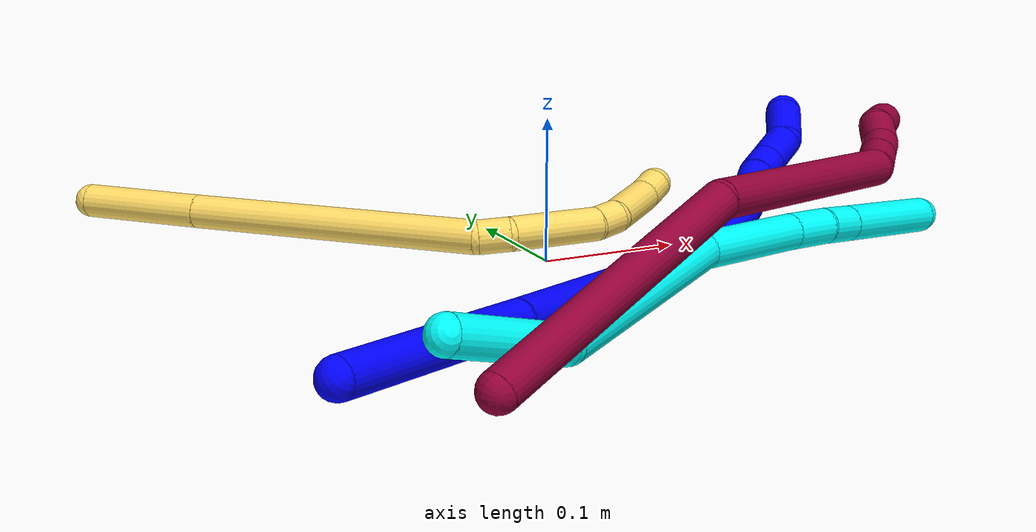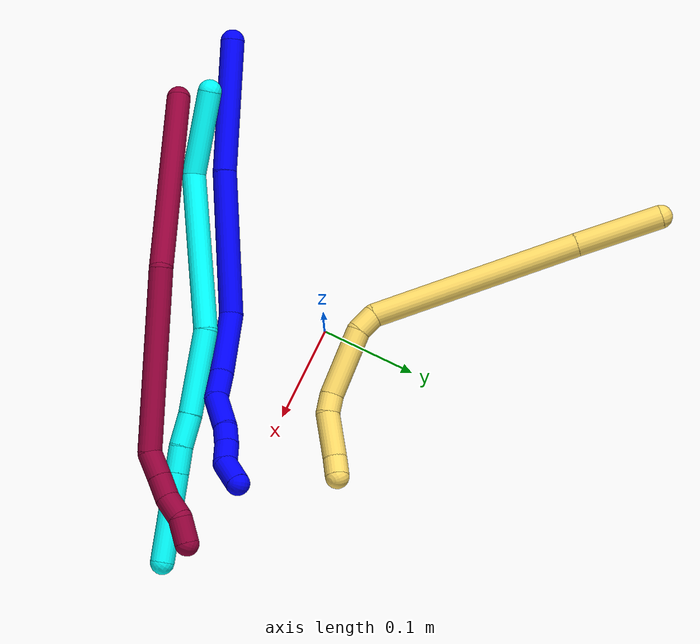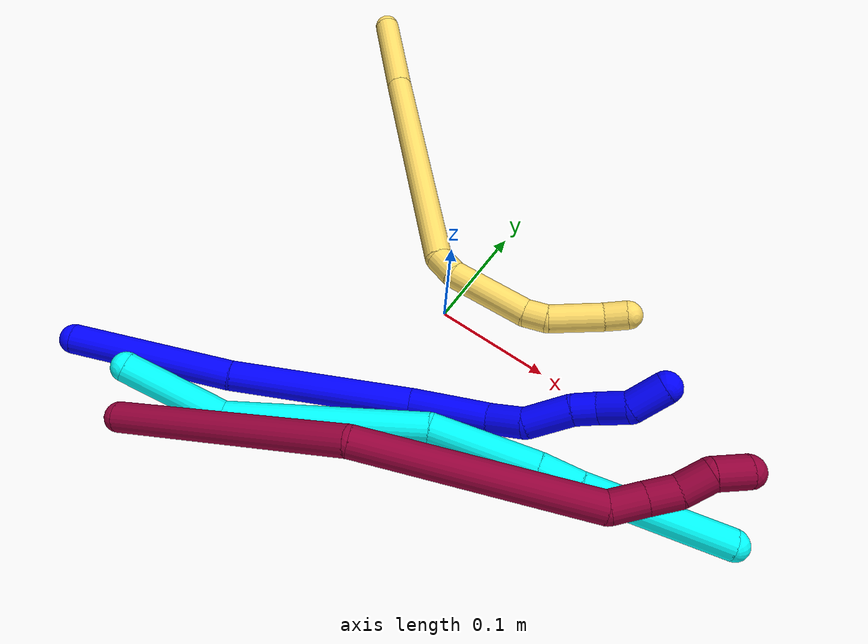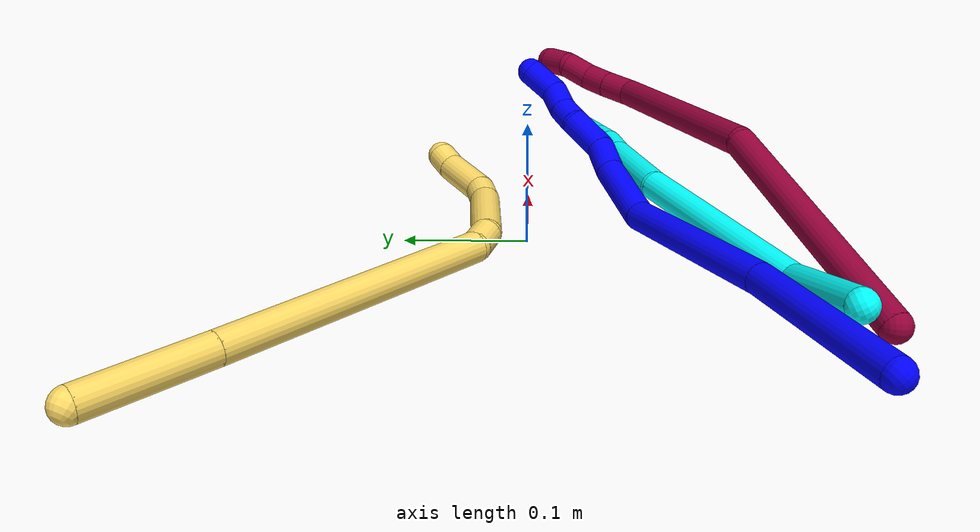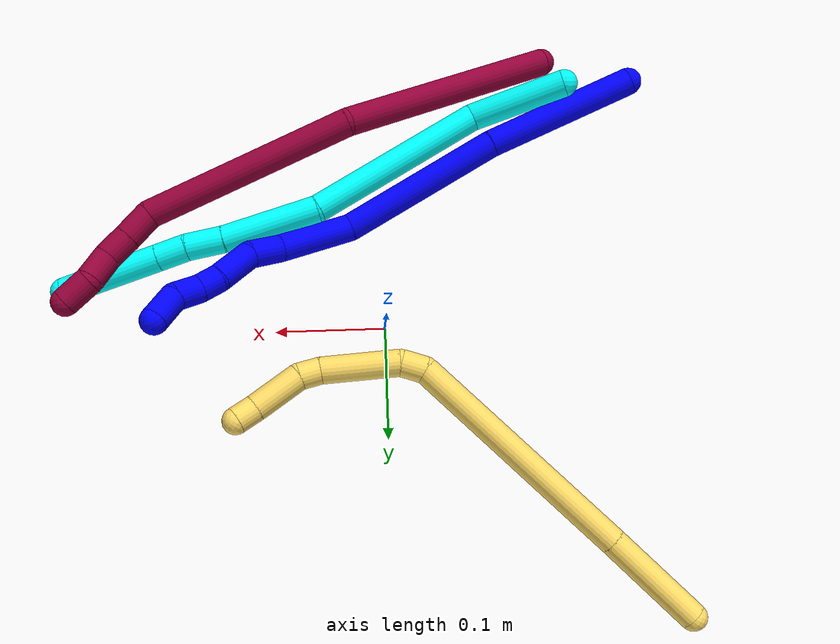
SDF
<sdf version="1.7">
 <world name="default">
  <model name="1">
   <static>0</static>
   <link name="1">
    <collision name="collision-cylinder-e_1_1_4">
     <pose>0.066259 0.021722 -0.000694 -1.60273 1.25386 -1.28435</pose>
     <geometry><cylinder><radius>0.0125</radius><length>0.139464</length></cylinder></geometry>
     <surface>
      <friction><ode><mu>1.16</mu><mu2>1.16</mu2><slip1>0</slip1><slip2>0</slip2></ode></friction>
      <contact><ode><kp>1e+06</kp><kd>1</kd><max_vel>0</max_vel><min_depth>0.001</min_depth></ode></contact>
     </surface>
    </collision>
    <visual name="visual-cylinder-e_1_1_4">
     <pose>0.066259 0.021722 -0.000694 -1.60273 1.25386 -1.28435</pose>
     <geometry><cylinder><radius>0.0125</radius><length>0.139464</length></cylinder></geometry>
     <material><ambient>0 0 1 1</ambient></material>
    </visual>
    <collision name="collision-cylinder-e_2_4_5">
     <pose>0.202685 0.069022 -0.00985 -1.8903 1.20418 -1.52079</pose>
     <geometry><cylinder><radius>0.0125</radius><length>0.150324</length></cylinder></geometry>
     <surface>
      <friction><ode><mu>1.16</mu><mu2>1.16</mu2><slip1>0</slip1><slip2>0</slip2></ode></friction>
      <contact><ode><kp>1e+06</kp><kd>1</kd><max_vel>0</max_vel><min_depth>0.001</min_depth></ode></contact>
     </surface>
    </collision>
    <visual name="visual-cylinder-e_2_4_5">
     <pose>0.202685 0.069022 -0.00985 -1.8903 1.20418 -1.52079</pose>
     <geometry><cylinder><radius>0.0125</radius><length>0.150324</length></cylinder></geometry>
     <material><ambient>0 0 1 1</ambient></material>
    </visual>
    <collision name="collision-cylinder-e_3_5_6">
     <pose>0.302407 0.109568 -0.011312 -1.1333 1.06098 -0.714396</pose>
     <geometry><cylinder><radius>0.0125</radius><length>0.06772</length></cylinder></geometry>
     <surface>
      <friction><ode><mu>1.16</mu><mu2>1.16</mu2><slip1>0</slip1><slip2>0</slip2></ode></friction>
      <contact><ode><kp>1e+06</kp><kd>1</kd><max_vel>0</max_vel><min_depth>0.001</min_depth></ode></contact>
     </surface>
    </collision>
    <visual name="visual-cylinder-e_3_5_6">
     <pose>0.302407 0.109568 -0.011312 -1.1333 1.06098 -0.714396</pose>
     <geometry><cylinder><radius>0.0125</radius><length>0.06772</length></cylinder></geometry>
     <material><ambient>0 0 1 1</ambient></material>
    </visual>
    <collision name="collision-cylinder-e_4_6_7">
     <pose>0.343459 0.132893 0.001003 -1.00444 0.859783 -0.493338</pose>
     <geometry><cylinder><radius>0.0125</radius><length>0.030351</length></cylinder></geometry>
     <surface>
      <friction><ode><mu>1.16</mu><mu2>1.16</mu2><slip1>0</slip1><slip2>0</slip2></ode></friction>
      <contact><ode><kp>1e+06</kp><kd>1</kd><max_vel>0</max_vel><min_depth>0.001</min_depth></ode></contact>
     </surface>
    </collision>
    <visual name="visual-cylinder-e_4_6_7">
     <pose>0.343459 0.132893 0.001003 -1.00444 0.859783 -0.493338</pose>
     <geometry><cylinder><radius>0.0125</radius><length>0.030351</length></cylinder></geometry>
     <material><ambient>0 0 1 1</ambient></material>
    </visual>
    <collision name="collision-cylinder-e_5_7_8">
     <pose>0.36691 0.156019 0.006705 -1.54453 0.68023 -0.663874</pose>
     <geometry><cylinder><radius>0.0125</radius><length>0.038005</length></cylinder></geometry>
     <surface>
      <friction><ode><mu>1.16</mu><mu2>1.16</mu2><slip1>0</slip1><slip2>0</slip2></ode></friction>
      <contact><ode><kp>1e+06</kp><kd>1</kd><max_vel>0</max_vel><min_depth>0.001</min_depth></ode></contact>
     </surface>
    </collision>
    <visual name="visual-cylinder-e_5_7_8">
     <pose>0.36691 0.156019 0.006705 -1.54453 0.68023 -0.663874</pose>
     <geometry><cylinder><radius>0.0125</radius><length>0.038005</length></cylinder></geometry>
     <material><ambient>0 0 1 1</ambient></material>
    </visual>
    <collision name="collision-cylinder-e_6_8_9">
     <pose>0.386601 0.177126 0.00799 -1.43028 0.879638 -0.77594</pose>
     <geometry><cylinder><radius>0.0125</radius><length>0.020089</length></cylinder></geometry>
     <surface>
      <friction><ode><mu>1.16</mu><mu2>1.16</mu2><slip1>0</slip1><slip2>0</slip2></ode></friction>
      <contact><ode><kp>1e+06</kp><kd>1</kd><max_vel>0</max_vel><min_depth>0.001</min_depth></ode></contact>
     </surface>
    </collision>
    <visual name="visual-cylinder-e_6_8_9">
     <pose>0.386601 0.177126 0.00799 -1.43028 0.879638 -0.77594</pose>
     <geometry><cylinder><radius>0.0125</radius><length>0.020089</length></cylinder></geometry>
     <material><ambient>0 0 1 1</ambient></material>
    </visual>
    <collision name="collision-cylinder-e_7_9_10">
     <pose>0.402751 0.191257 0.012437 -1.14323 0.776514 -0.51454</pose>
     <geometry><cylinder><radius>0.0125</radius><length>0.024004</length></cylinder></geometry>
     <surface>
      <friction><ode><mu>1.16</mu><mu2>1.16</mu2><slip1>0</slip1><slip2>0</slip2></ode></friction>
      <contact><ode><kp>1e+06</kp><kd>1</kd><max_vel>0</max_vel><min_depth>0.001</min_depth></ode></contact>
     </surface>
    </collision>
    <visual name="visual-cylinder-e_7_9_10">
     <pose>0.402751 0.191257 0.012437 -1.14323 0.776514 -0.51454</pose>
     <geometry><cylinder><radius>0.0125</radius><length>0.024004</length></cylinder></geometry>
     <material><ambient>0 0 1 1</ambient></material>
    </visual>
    <collision name="collision-cylinder-e_8_10_2">
     <pose>0.417875 0.212443 0.014917 -1.65049 0.463263 -0.500206</pose>
     <geometry><cylinder><radius>0.0125</radius><length>0.030043</length></cylinder></geometry>
     <surface>
      <friction><ode><mu>1.16</mu><mu2>1.16</mu2><slip1>0</slip1><slip2>0</slip2></ode></friction>
      <contact><ode><kp>1e+06</kp><kd>1</kd><max_vel>0</max_vel><min_depth>0.001</min_depth></ode></contact>
     </surface>
    </collision>
    <visual name="visual-cylinder-e_8_10_2">
     <pose>0.417875 0.212443 0.014917 -1.65049 0.463263 -0.500206</pose>
     <geometry><cylinder><radius>0.0125</radius><length>0.030043</length></cylinder></geometry>
     <material><ambient>0 0 1 1</ambient></material>
    </visual>
    <collision name="collision-sphere-2">
     <pose>0.424588 0.225839 0.013847 0 -0 0</pose>
     <geometry><sphere><radius>0.0125</radius></sphere></geometry>
     <surface>
      <friction><ode><mu>1.16</mu><mu2>1.16</mu2><slip1>0</slip1><slip2>0</slip2></ode></friction>
      <contact><ode><kp>1e+06</kp><kd>1</kd><max_vel>0</max_vel><min_depth>0.001</min_depth></ode></contact>
     </surface>
    </collision>
    <visual name="visual-sphere-2">
     <pose>0.424588 0.225839 0.013847 0 -0 0</pose>
     <geometry><sphere><radius>0.0125</radius></sphere></geometry>
     <material><ambient>0 0 1 1</ambient></material>
    </visual>
    <collision name="collision-sphere-10">
     <pose>0.411162 0.199048 0.015987 0 -0 0</pose>
     <geometry><sphere><radius>0.0125</radius></sphere></geometry>
     <surface>
      <friction><ode><mu>1.16</mu><mu2>1.16</mu2><slip1>0</slip1><slip2>0</slip2></ode></friction>
      <contact><ode><kp>1e+06</kp><kd>1</kd><max_vel>0</max_vel><min_depth>0.001</min_depth></ode></contact>
     </surface>
    </collision>
    <visual name="visual-sphere-10">
     <pose>0.411162 0.199048 0.015987 0 -0 0</pose>
     <geometry><sphere><radius>0.0125</radius></sphere></geometry>
     <material><ambient>0 0 1 1</ambient></material>
    </visual>
    <collision name="collision-sphere-9">
     <pose>0.39434 0.183466 0.008886 0 -0 0</pose>
     <geometry><sphere><radius>0.0125</radius></sphere></geometry>
     <surface>
      <friction><ode><mu>1.16</mu><mu2>1.16</mu2><slip1>0</slip1><slip2>0</slip2></ode></friction>
      <contact><ode><kp>1e+06</kp><kd>1</kd><max_vel>0</max_vel><min_depth>0.001</min_depth></ode></contact>
     </surface>
    </collision>
    <visual name="visual-sphere-9">
     <pose>0.39434 0.183466 0.008886 0 -0 0</pose>
     <geometry><sphere><radius>0.0125</radius></sphere></geometry>
     <material><ambient>0 0 1 1</ambient></material>
    </visual>
    <collision name="collision-sphere-4">
     <pose>0.132518 0.043443 -0.001388 0 -0 0</pose>
     <geometry><sphere><radius>0.0125</radius></sphere></geometry>
     <surface>
      <friction><ode><mu>1.16</mu><mu2>1.16</mu2><slip1>0</slip1><slip2>0</slip2></ode></friction>
      <contact><ode><kp>1e+06</kp><kd>1</kd><max_vel>0</max_vel><min_depth>0.001</min_depth></ode></contact>
     </surface>
    </collision>
    <visual name="visual-sphere-4">
     <pose>0.132518 0.043443 -0.001388 0 -0 0</pose>
     <geometry><sphere><radius>0.0125</radius></sphere></geometry>
     <material><ambient>0 0 1 1</ambient></material>
    </visual>
    <collision name="collision-sphere-1">
     <geometry><sphere><radius>0.0125</radius></sphere></geometry>
     <surface>
      <friction><ode><mu>1.16</mu><mu2>1.16</mu2><slip1>0</slip1><slip2>0</slip2></ode></friction>
      <contact><ode><kp>1e+06</kp><kd>1</kd><max_vel>0</max_vel><min_depth>0.001</min_depth></ode></contact>
     </surface>
    </collision>
    <visual name="visual-sphere-1">
     <geometry><sphere><radius>0.0125</radius></sphere></geometry>
     <material><ambient>0 0 1 1</ambient></material>
    </visual>
    <collision name="collision-sphere-8">
     <pose>0.378862 0.170787 0.007093 0 -0 0</pose>
     <geometry><sphere><radius>0.0125</radius></sphere></geometry>
     <surface>
      <friction><ode><mu>1.16</mu><mu2>1.16</mu2><slip1>0</slip1><slip2>0</slip2></ode></friction>
      <contact><ode><kp>1e+06</kp><kd>1</kd><max_vel>0</max_vel><min_depth>0.001</min_depth></ode></contact>
     </surface>
    </collision>
    <visual name="visual-sphere-8">
     <pose>0.378862 0.170787 0.007093 0 -0 0</pose>
     <geometry><sphere><radius>0.0125</radius></sphere></geometry>
     <material><ambient>0 0 1 1</ambient></material>
    </visual>
    <collision name="collision-sphere-5">
     <pose>0.272853 0.0946 -0.018313 0 -0 0</pose>
     <geometry><sphere><radius>0.0125</radius></sphere></geometry>
     <surface>
      <friction><ode><mu>1.16</mu><mu2>1.16</mu2><slip1>0</slip1><slip2>0</slip2></ode></friction>
      <contact><ode><kp>1e+06</kp><kd>1</kd><max_vel>0</max_vel><min_depth>0.001</min_depth></ode></contact>
     </surface>
    </collision>
    <visual name="visual-sphere-5">
     <pose>0.272853 0.0946 -0.018313 0 -0 0</pose>
     <geometry><sphere><radius>0.0125</radius></sphere></geometry>
     <material><ambient>0 0 1 1</ambient></material>
    </visual>
    <collision name="collision-sphere-6">
     <pose>0.331961 0.124536 -0.004311 0 -0 0</pose>
     <geometry><sphere><radius>0.0125</radius></sphere></geometry>
     <surface>
      <friction><ode><mu>1.16</mu><mu2>1.16</mu2><slip1>0</slip1><slip2>0</slip2></ode></friction>
      <contact><ode><kp>1e+06</kp><kd>1</kd><max_vel>0</max_vel><min_depth>0.001</min_depth></ode></contact>
     </surface>
    </collision>
    <visual name="visual-sphere-6">
     <pose>0.331961 0.124536 -0.004311 0 -0 0</pose>
     <geometry><sphere><radius>0.0125</radius></sphere></geometry>
     <material><ambient>0 0 1 1</ambient></material>
    </visual>
    <collision name="collision-sphere-7">
     <pose>0.354958 0.141251 0.006317 0 -0 0</pose>
     <geometry><sphere><radius>0.0125</radius></sphere></geometry>
     <surface>
      <friction><ode><mu>1.16</mu><mu2>1.16</mu2><slip1>0</slip1><slip2>0</slip2></ode></friction>
      <contact><ode><kp>1e+06</kp><kd>1</kd><max_vel>0</max_vel><min_depth>0.001</min_depth></ode></contact>
     </surface>
    </collision>
    <visual name="visual-sphere-7">
     <pose>0.354958 0.141251 0.006317 0 -0 0</pose>
     <geometry><sphere><radius>0.0125</radius></sphere></geometry>
     <material><ambient>0 0 1 1</ambient></material>
    </visual>
    <inertial>
     <pose>0.22909 0.090639 -0.002302 0 -0 0</pose>
     <mass>0.5</mass>
     <inertia>
      <ixx>-0.000109</ixx>
      <ixy>0</ixy>
      <ixz>0</ixz>
      <iyy>0.000321</iyy>
      <iyz>0</iyz>
      <izz>-0.000719</izz>
     </inertia>
    </inertial>
   </link>
   <pose>-0.230425 -0.220535 0.022945 0.883502 0.262718 0.196092</pose>
  </model>
  <model name="3">
   <static>0</static>
   <link name="3">
    <collision name="collision-cylinder-e_1_1_4">
     <pose>0.039881 -0.00477 -0.0186 2.89057 1.12208 2.74528</pose>
     <geometry><cylinder><radius>0.0125</radius><length>0.088526</length></cylinder></geometry>
     <surface>
      <friction><ode><mu>1.16</mu><mu2>1.16</mu2><slip1>0</slip1><slip2>0</slip2></ode></friction>
      <contact><ode><kp>1e+06</kp><kd>1</kd><max_vel>0</max_vel><min_depth>0.001</min_depth></ode></contact>
     </surface>
    </collision>
    <visual name="visual-cylinder-e_1_1_4">
     <pose>0.039881 -0.00477 -0.0186 2.89057 1.12208 2.74528</pose>
     <geometry><cylinder><radius>0.0125</radius><length>0.088526</length></cylinder></geometry>
     <material><ambient>0.003922 1 0.996078 1</ambient></material>
    </visual>
    <collision name="collision-cylinder-e_2_4_5">
     <pose>0.148767 0.019521 -0.076661 -2.50683 0.953255 -2.00838</pose>
     <geometry><cylinder><radius>0.0125</radius><length>0.169273</length></cylinder></geometry>
     <surface>
      <friction><ode><mu>1.16</mu><mu2>1.16</mu2><slip1>0</slip1><slip2>0</slip2></ode></friction>
      <contact><ode><kp>1e+06</kp><kd>1</kd><max_vel>0</max_vel><min_depth>0.001</min_depth></ode></contact>
     </surface>
    </collision>
    <visual name="visual-cylinder-e_2_4_5">
     <pose>0.148767 0.019521 -0.076661 -2.50683 0.953255 -2.00838</pose>
     <geometry><cylinder><radius>0.0125</radius><length>0.169273</length></cylinder></geometry>
     <material><ambient>0.003922 1 0.996078 1</ambient></material>
    </visual>
    <collision name="collision-cylinder-e_3_5_6">
     <pose>0.259223 0.053802 -0.131064 -2.80548 1.20605 -2.65845</pose>
     <geometry><cylinder><radius>0.0125</radius><length>0.088742</length></cylinder></geometry>
     <surface>
      <friction><ode><mu>1.16</mu><mu2>1.16</mu2><slip1>0</slip1><slip2>0</slip2></ode></friction>
      <contact><ode><kp>1e+06</kp><kd>1</kd><max_vel>0</max_vel><min_depth>0.001</min_depth></ode></contact>
     </surface>
    </collision>
    <visual name="visual-cylinder-e_3_5_6">
     <pose>0.259223 0.053802 -0.131064 -2.80548 1.20605 -2.65845</pose>
     <geometry><cylinder><radius>0.0125</radius><length>0.088742</length></cylinder></geometry>
     <material><ambient>0.003922 1 0.996078 1</ambient></material>
    </visual>
    <collision name="collision-cylinder-e_4_6_7">
     <pose>0.317077 0.060271 -0.150291 -2.85812 1.30512 -2.77242</pose>
     <geometry><cylinder><radius>0.0125</radius><length>0.033997</length></cylinder></geometry>
     <surface>
      <friction><ode><mu>1.16</mu><mu2>1.16</mu2><slip1>0</slip1><slip2>0</slip2></ode></friction>
      <contact><ode><kp>1e+06</kp><kd>1</kd><max_vel>0</max_vel><min_depth>0.001</min_depth></ode></contact>
     </surface>
    </collision>
    <visual name="visual-cylinder-e_4_6_7">
     <pose>0.317077 0.060271 -0.150291 -2.85812 1.30512 -2.77242</pose>
     <geometry><cylinder><radius>0.0125</radius><length>0.033997</length></cylinder></geometry>
     <material><ambient>0.003922 1 0.996078 1</ambient></material>
    </visual>
    <collision name="collision-cylinder-e_5_7_8">
     <pose>0.346097 0.062382 -0.15985 -2.97946 1.17018 -2.89753</pose>
     <geometry><cylinder><radius>0.0125</radius><length>0.027407</length></cylinder></geometry>
     <surface>
      <friction><ode><mu>1.16</mu><mu2>1.16</mu2><slip1>0</slip1><slip2>0</slip2></ode></friction>
      <contact><ode><kp>1e+06</kp><kd>1</kd><max_vel>0</max_vel><min_depth>0.001</min_depth></ode></contact>
     </surface>
    </collision>
    <visual name="visual-cylinder-e_5_7_8">
     <pose>0.346097 0.062382 -0.15985 -2.97946 1.17018 -2.89753</pose>
     <geometry><cylinder><radius>0.0125</radius><length>0.027407</length></cylinder></geometry>
     <material><ambient>0.003922 1 0.996078 1</ambient></material>
    </visual>
    <collision name="collision-cylinder-e_6_8_2">
     <pose>0.401213 0.066313 -0.182535 -2.96711 1.17656 -2.88084</pose>
     <geometry><cylinder><radius>0.0125</radius><length>0.092056</length></cylinder></geometry>
     <surface>
      <friction><ode><mu>1.16</mu><mu2>1.16</mu2><slip1>0</slip1><slip2>0</slip2></ode></friction>
      <contact><ode><kp>1e+06</kp><kd>1</kd><max_vel>0</max_vel><min_depth>0.001</min_depth></ode></contact>
     </surface>
    </collision>
    <visual name="visual-cylinder-e_6_8_2">
     <pose>0.401213 0.066313 -0.182535 -2.96711 1.17656 -2.88084</pose>
     <geometry><cylinder><radius>0.0125</radius><length>0.092056</length></cylinder></geometry>
     <material><ambient>0.003922 1 0.996078 1</ambient></material>
    </visual>
    <collision name="collision-sphere-2">
     <pose>0.44371 0.069383 -0.199947 0 -0 0</pose>
     <geometry><sphere><radius>0.0125</radius></sphere></geometry>
     <surface>
      <friction><ode><mu>1.16</mu><mu2>1.16</mu2><slip1>0</slip1><slip2>0</slip2></ode></friction>
      <contact><ode><kp>1e+06</kp><kd>1</kd><max_vel>0</max_vel><min_depth>0.001</min_depth></ode></contact>
     </surface>
    </collision>
    <visual name="visual-sphere-2">
     <pose>0.44371 0.069383 -0.199947 0 -0 0</pose>
     <geometry><sphere><radius>0.0125</radius></sphere></geometry>
     <material><ambient>0.003922 1 0.996078 1</ambient></material>
    </visual>
    <collision name="collision-sphere-4">
     <pose>0.079762 -0.009539 -0.0372 0 -0 0</pose>
     <geometry><sphere><radius>0.0125</radius></sphere></geometry>
     <surface>
      <friction><ode><mu>1.16</mu><mu2>1.16</mu2><slip1>0</slip1><slip2>0</slip2></ode></friction>
      <contact><ode><kp>1e+06</kp><kd>1</kd><max_vel>0</max_vel><min_depth>0.001</min_depth></ode></contact>
     </surface>
    </collision>
    <visual name="visual-sphere-4">
     <pose>0.079762 -0.009539 -0.0372 0 -0 0</pose>
     <geometry><sphere><radius>0.0125</radius></sphere></geometry>
     <material><ambient>0.003922 1 0.996078 1</ambient></material>
    </visual>
    <collision name="collision-sphere-1">
     <geometry><sphere><radius>0.0125</radius></sphere></geometry>
     <surface>
      <friction><ode><mu>1.16</mu><mu2>1.16</mu2><slip1>0</slip1><slip2>0</slip2></ode></friction>
      <contact><ode><kp>1e+06</kp><kd>1</kd><max_vel>0</max_vel><min_depth>0.001</min_depth></ode></contact>
     </surface>
    </collision>
    <visual name="visual-sphere-1">
     <geometry><sphere><radius>0.0125</radius></sphere></geometry>
     <material><ambient>0.003922 1 0.996078 1</ambient></material>
    </visual>
    <collision name="collision-sphere-8">
     <pose>0.358715 0.063244 -0.165124 0 -0 0</pose>
     <geometry><sphere><radius>0.0125</radius></sphere></geometry>
     <surface>
      <friction><ode><mu>1.16</mu><mu2>1.16</mu2><slip1>0</slip1><slip2>0</slip2></ode></friction>
      <contact><ode><kp>1e+06</kp><kd>1</kd><max_vel>0</max_vel><min_depth>0.001</min_depth></ode></contact>
     </surface>
    </collision>
    <visual name="visual-sphere-8">
     <pose>0.358715 0.063244 -0.165124 0 -0 0</pose>
     <geometry><sphere><radius>0.0125</radius></sphere></geometry>
     <material><ambient>0.003922 1 0.996078 1</ambient></material>
    </visual>
    <collision name="collision-sphere-5">
     <pose>0.217771 0.048582 -0.116122 0 -0 0</pose>
     <geometry><sphere><radius>0.0125</radius></sphere></geometry>
     <surface>
      <friction><ode><mu>1.16</mu><mu2>1.16</mu2><slip1>0</slip1><slip2>0</slip2></ode></friction>
      <contact><ode><kp>1e+06</kp><kd>1</kd><max_vel>0</max_vel><min_depth>0.001</min_depth></ode></contact>
     </surface>
    </collision>
    <visual name="visual-sphere-5">
     <pose>0.217771 0.048582 -0.116122 0 -0 0</pose>
     <geometry><sphere><radius>0.0125</radius></sphere></geometry>
     <material><ambient>0.003922 1 0.996078 1</ambient></material>
    </visual>
    <collision name="collision-sphere-6">
     <pose>0.300675 0.059022 -0.146006 0 -0 0</pose>
     <geometry><sphere><radius>0.0125</radius></sphere></geometry>
     <surface>
      <friction><ode><mu>1.16</mu><mu2>1.16</mu2><slip1>0</slip1><slip2>0</slip2></ode></friction>
      <contact><ode><kp>1e+06</kp><kd>1</kd><max_vel>0</max_vel><min_depth>0.001</min_depth></ode></contact>
     </surface>
    </collision>
    <visual name="visual-sphere-6">
     <pose>0.300675 0.059022 -0.146006 0 -0 0</pose>
     <geometry><sphere><radius>0.0125</radius></sphere></geometry>
     <material><ambient>0.003922 1 0.996078 1</ambient></material>
    </visual>
    <collision name="collision-sphere-7">
     <pose>0.333479 0.061519 -0.154576 0 -0 0</pose>
     <geometry><sphere><radius>0.0125</radius></sphere></geometry>
     <surface>
      <friction><ode><mu>1.16</mu><mu2>1.16</mu2><slip1>0</slip1><slip2>0</slip2></ode></friction>
      <contact><ode><kp>1e+06</kp><kd>1</kd><max_vel>0</max_vel><min_depth>0.001</min_depth></ode></contact>
     </surface>
    </collision>
    <visual name="visual-sphere-7">
     <pose>0.333479 0.061519 -0.154576 0 -0 0</pose>
     <geometry><sphere><radius>0.0125</radius></sphere></geometry>
     <material><ambient>0.003922 1 0.996078 1</ambient></material>
    </visual>
    <inertial>
     <pose>0.217831 0.03504 -0.105096 0 -0 0</pose>
     <mass>0.5</mass>
     <inertia>
      <ixx>-0.000361</ixx>
      <ixy>0</ixy>
      <ixz>0</ixz>
      <iyy>0.000298</iyy>
      <iyz>0</iyz>
      <izz>-0.000681</izz>
     </inertia>
    </inertial>
   </link>
   <pose>-0.169124 -0.215888 0.035566 1.05354 -0.03262 -0.075773</pose>
  </model>
  <model name="5">
   <static>0</static>
   <link name="5">
    <collision name="collision-cylinder-e_1_1_4">
     <pose>-0.026913 0.015695 -0.034489 -2.71453 -0.617571 1.94755</pose>
     <geometry><cylinder><radius>0.0125</radius><length>0.092954</length></cylinder></geometry>
     <surface>
      <friction><ode><mu>1.16</mu><mu2>1.16</mu2><slip1>0</slip1><slip2>0</slip2></ode></friction>
      <contact><ode><kp>1e+06</kp><kd>1</kd><max_vel>0</max_vel><min_depth>0.001</min_depth></ode></contact>
     </surface>
    </collision>
    <visual name="visual-cylinder-e_1_1_4">
     <pose>-0.026913 0.015695 -0.034489 -2.71453 -0.617571 1.94755</pose>
     <geometry><cylinder><radius>0.0125</radius><length>0.092954</length></cylinder></geometry>
     <material><ambient>1 0.858824 0.4 1</ambient></material>
    </visual>
    <collision name="collision-cylinder-e_2_4_5">
     <pose>-0.11704 0.069551 -0.152254 -2.71191 -0.60404 1.9196</pose>
     <geometry><cylinder><radius>0.0125</radius><length>0.222597</length></cylinder></geometry>
     <surface>
      <friction><ode><mu>1.16</mu><mu2>1.16</mu2><slip1>0</slip1><slip2>0</slip2></ode></friction>
      <contact><ode><kp>1e+06</kp><kd>1</kd><max_vel>0</max_vel><min_depth>0.001</min_depth></ode></contact>
     </surface>
    </collision>
    <visual name="visual-cylinder-e_2_4_5">
     <pose>-0.11704 0.069551 -0.152254 -2.71191 -0.60404 1.9196</pose>
     <geometry><cylinder><radius>0.0125</radius><length>0.222597</length></cylinder></geometry>
     <material><ambient>1 0.858824 0.4 1</ambient></material>
    </visual>
    <collision name="collision-cylinder-e_3_5_6">
     <pose>-0.182068 0.114026 -0.245145 -2.56046 -0.1564 0.512569</pose>
     <geometry><cylinder><radius>0.0125</radius><length>0.023287</length></cylinder></geometry>
     <surface>
      <friction><ode><mu>1.16</mu><mu2>1.16</mu2><slip1>0</slip1><slip2>0</slip2></ode></friction>
      <contact><ode><kp>1e+06</kp><kd>1</kd><max_vel>0</max_vel><min_depth>0.001</min_depth></ode></contact>
     </surface>
    </collision>
    <visual name="visual-cylinder-e_3_5_6">
     <pose>-0.182068 0.114026 -0.245145 -2.56046 -0.1564 0.512569</pose>
     <geometry><cylinder><radius>0.0125</radius><length>0.023287</length></cylinder></geometry>
     <material><ambient>1 0.858824 0.4 1</ambient></material>
    </visual>
    <collision name="collision-cylinder-e_4_6_7">
     <pose>-0.178191 0.146228 -0.279397 -2.33146 0.157908 -0.364935</pose>
     <geometry><cylinder><radius>0.0125</radius><length>0.072378</length></cylinder></geometry>
     <surface>
      <friction><ode><mu>1.16</mu><mu2>1.16</mu2><slip1>0</slip1><slip2>0</slip2></ode></friction>
      <contact><ode><kp>1e+06</kp><kd>1</kd><max_vel>0</max_vel><min_depth>0.001</min_depth></ode></contact>
     </surface>
    </collision>
    <visual name="visual-cylinder-e_4_6_7">
     <pose>-0.178191 0.146228 -0.279397 -2.33146 0.157908 -0.364935</pose>
     <geometry><cylinder><radius>0.0125</radius><length>0.072378</length></cylinder></geometry>
     <material><ambient>1 0.858824 0.4 1</ambient></material>
    </visual>
    <collision name="collision-cylinder-e_5_7_8">
     <pose>-0.168695 0.178446 -0.31084 -2.39242 0.388663 -0.92828</pose>
     <geometry><cylinder><radius>0.0125</radius><length>0.020085</length></cylinder></geometry>
     <surface>
      <friction><ode><mu>1.16</mu><mu2>1.16</mu2><slip1>0</slip1><slip2>0</slip2></ode></friction>
      <contact><ode><kp>1e+06</kp><kd>1</kd><max_vel>0</max_vel><min_depth>0.001</min_depth></ode></contact>
     </surface>
    </collision>
    <visual name="visual-cylinder-e_5_7_8">
     <pose>-0.168695 0.178446 -0.31084 -2.39242 0.388663 -0.92828</pose>
     <geometry><cylinder><radius>0.0125</radius><length>0.020085</length></cylinder></geometry>
     <material><ambient>1 0.858824 0.4 1</ambient></material>
    </visual>
    <collision name="collision-cylinder-e_6_8_9">
     <pose>-0.149165 0.199288 -0.328674 -2.22061 0.711807 -1.28619</pose>
     <geometry><cylinder><radius>0.0125</radius><length>0.048145</length></cylinder></geometry>
     <surface>
      <friction><ode><mu>1.16</mu><mu2>1.16</mu2><slip1>0</slip1><slip2>0</slip2></ode></friction>
      <contact><ode><kp>1e+06</kp><kd>1</kd><max_vel>0</max_vel><min_depth>0.001</min_depth></ode></contact>
     </surface>
    </collision>
    <visual name="visual-cylinder-e_6_8_9">
     <pose>-0.149165 0.199288 -0.328674 -2.22061 0.711807 -1.28619</pose>
     <geometry><cylinder><radius>0.0125</radius><length>0.048145</length></cylinder></geometry>
     <material><ambient>1 0.858824 0.4 1</ambient></material>
    </visual>
    <collision name="collision-cylinder-e_7_9_2">
     <pose>-0.126529 0.218765 -0.345464 -2.43039 0.737616 -1.61064</pose>
     <geometry><cylinder><radius>0.0125</radius><length>0.020554</length></cylinder></geometry>
     <surface>
      <friction><ode><mu>1.16</mu><mu2>1.16</mu2><slip1>0</slip1><slip2>0</slip2></ode></friction>
      <contact><ode><kp>1e+06</kp><kd>1</kd><max_vel>0</max_vel><min_depth>0.001</min_depth></ode></contact>
     </surface>
    </collision>
    <visual name="visual-cylinder-e_7_9_2">
     <pose>-0.126529 0.218765 -0.345464 -2.43039 0.737616 -1.61064</pose>
     <geometry><cylinder><radius>0.0125</radius><length>0.020554</length></cylinder></geometry>
     <material><ambient>1 0.858824 0.4 1</ambient></material>
    </visual>
    <collision name="collision-sphere-2">
     <pose>-0.119618 0.223729 -0.351225 0 -0 0</pose>
     <geometry><sphere><radius>0.0125</radius></sphere></geometry>
     <surface>
      <friction><ode><mu>1.16</mu><mu2>1.16</mu2><slip1>0</slip1><slip2>0</slip2></ode></friction>
      <contact><ode><kp>1e+06</kp><kd>1</kd><max_vel>0</max_vel><min_depth>0.001</min_depth></ode></contact>
     </surface>
    </collision>
    <visual name="visual-sphere-2">
     <pose>-0.119618 0.223729 -0.351225 0 -0 0</pose>
     <geometry><sphere><radius>0.0125</radius></sphere></geometry>
     <material><ambient>1 0.858824 0.4 1</ambient></material>
    </visual>
    <collision name="collision-sphere-9">
     <pose>-0.133441 0.2138 -0.339702 0 -0 0</pose>
     <geometry><sphere><radius>0.0125</radius></sphere></geometry>
     <surface>
      <friction><ode><mu>1.16</mu><mu2>1.16</mu2><slip1>0</slip1><slip2>0</slip2></ode></friction>
      <contact><ode><kp>1e+06</kp><kd>1</kd><max_vel>0</max_vel><min_depth>0.001</min_depth></ode></contact>
     </surface>
    </collision>
    <visual name="visual-sphere-9">
     <pose>-0.133441 0.2138 -0.339702 0 -0 0</pose>
     <geometry><sphere><radius>0.0125</radius></sphere></geometry>
     <material><ambient>1 0.858824 0.4 1</ambient></material>
    </visual>
    <collision name="collision-sphere-4">
     <pose>-0.053825 0.03139 -0.068977 0 -0 0</pose>
     <geometry><sphere><radius>0.0125</radius></sphere></geometry>
     <surface>
      <friction><ode><mu>1.16</mu><mu2>1.16</mu2><slip1>0</slip1><slip2>0</slip2></ode></friction>
      <contact><ode><kp>1e+06</kp><kd>1</kd><max_vel>0</max_vel><min_depth>0.001</min_depth></ode></contact>
     </surface>
    </collision>
    <visual name="visual-sphere-4">
     <pose>-0.053825 0.03139 -0.068977 0 -0 0</pose>
     <geometry><sphere><radius>0.0125</radius></sphere></geometry>
     <material><ambient>1 0.858824 0.4 1</ambient></material>
    </visual>
    <collision name="collision-sphere-1">
     <geometry><sphere><radius>0.0125</radius></sphere></geometry>
     <surface>
      <friction><ode><mu>1.16</mu><mu2>1.16</mu2><slip1>0</slip1><slip2>0</slip2></ode></friction>
      <contact><ode><kp>1e+06</kp><kd>1</kd><max_vel>0</max_vel><min_depth>0.001</min_depth></ode></contact>
     </surface>
    </collision>
    <visual name="visual-sphere-1">
     <geometry><sphere><radius>0.0125</radius></sphere></geometry>
     <material><ambient>1 0.858824 0.4 1</ambient></material>
    </visual>
    <collision name="collision-sphere-8">
     <pose>-0.164889 0.184775 -0.317646 0 -0 0</pose>
     <geometry><sphere><radius>0.0125</radius></sphere></geometry>
     <surface>
      <friction><ode><mu>1.16</mu><mu2>1.16</mu2><slip1>0</slip1><slip2>0</slip2></ode></friction>
      <contact><ode><kp>1e+06</kp><kd>1</kd><max_vel>0</max_vel><min_depth>0.001</min_depth></ode></contact>
     </surface>
    </collision>
    <visual name="visual-sphere-8">
     <pose>-0.164889 0.184775 -0.317646 0 -0 0</pose>
     <geometry><sphere><radius>0.0125</radius></sphere></geometry>
     <material><ambient>1 0.858824 0.4 1</ambient></material>
    </visual>
    <collision name="collision-sphere-5">
     <pose>-0.180255 0.107712 -0.235532 0 -0 0</pose>
     <geometry><sphere><radius>0.0125</radius></sphere></geometry>
     <surface>
      <friction><ode><mu>1.16</mu><mu2>1.16</mu2><slip1>0</slip1><slip2>0</slip2></ode></friction>
      <contact><ode><kp>1e+06</kp><kd>1</kd><max_vel>0</max_vel><min_depth>0.001</min_depth></ode></contact>
     </surface>
    </collision>
    <visual name="visual-sphere-5">
     <pose>-0.180255 0.107712 -0.235532 0 -0 0</pose>
     <geometry><sphere><radius>0.0125</radius></sphere></geometry>
     <material><ambient>1 0.858824 0.4 1</ambient></material>
    </visual>
    <collision name="collision-sphere-6">
     <pose>-0.183882 0.12034 -0.254758 0 -0 0</pose>
     <geometry><sphere><radius>0.0125</radius></sphere></geometry>
     <surface>
      <friction><ode><mu>1.16</mu><mu2>1.16</mu2><slip1>0</slip1><slip2>0</slip2></ode></friction>
      <contact><ode><kp>1e+06</kp><kd>1</kd><max_vel>0</max_vel><min_depth>0.001</min_depth></ode></contact>
     </surface>
    </collision>
    <visual name="visual-sphere-6">
     <pose>-0.183882 0.12034 -0.254758 0 -0 0</pose>
     <geometry><sphere><radius>0.0125</radius></sphere></geometry>
     <material><ambient>1 0.858824 0.4 1</ambient></material>
    </visual>
    <collision name="collision-sphere-7">
     <pose>-0.1725 0.172117 -0.304035 0 -0 0</pose>
     <geometry><sphere><radius>0.0125</radius></sphere></geometry>
     <surface>
      <friction><ode><mu>1.16</mu><mu2>1.16</mu2><slip1>0</slip1><slip2>0</slip2></ode></friction>
      <contact><ode><kp>1e+06</kp><kd>1</kd><max_vel>0</max_vel><min_depth>0.001</min_depth></ode></contact>
     </surface>
    </collision>
    <visual name="visual-sphere-7">
     <pose>-0.1725 0.172117 -0.304035 0 -0 0</pose>
     <geometry><sphere><radius>0.0125</radius></sphere></geometry>
     <material><ambient>1 0.858824 0.4 1</ambient></material>
    </visual>
    <inertial>
     <pose>-0.117724 0.09571 -0.184392 0 -0 0</pose>
     <mass>0.5</mass>
     <inertia>
      <ixx>0.000495</ixx>
      <ixy>0</ixy>
      <ixz>0</ixz>
      <iyy>0.001283</iyy>
      <iyz>0</iyz>
      <izz>0.00015</izz>
     </inertia>
    </inertial>
   </link>
   <pose>-0.259214 0.261391 0.013244 -2.29048 -0.399683 1.4564</pose>
  </model>
  <model name="8">
   <static>0</static>
   <link name="8">
    <collision name="collision-cylinder-e_1_1_4">
     <pose>0.058775 0.077717 -0.034126 -1.98455 0.605646 -0.89246</pose>
     <geometry><cylinder><radius>0.0125</radius><length>0.206485</length></cylinder></geometry>
     <surface>
      <friction><ode><mu>1.16</mu><mu2>1.16</mu2><slip1>0</slip1><slip2>0</slip2></ode></friction>
      <contact><ode><kp>1e+06</kp><kd>1</kd><max_vel>0</max_vel><min_depth>0.001</min_depth></ode></contact>
     </surface>
    </collision>
    <visual name="visual-cylinder-e_1_1_4">
     <pose>0.058775 0.077717 -0.034126 -1.98455 0.605646 -0.89246</pose>
     <geometry><cylinder><radius>0.0125</radius><length>0.206485</length></cylinder></geometry>
     <material><ambient>0.584314 0 0.227451 1</ambient></material>
    </visual>
    <collision name="collision-cylinder-e_2_4_5">
     <pose>0.194729 0.199243 -0.10027 -2.20195 0.958009 -1.59339</pose>
     <geometry><cylinder><radius>0.0125</radius><length>0.188689</length></cylinder></geometry>
     <surface>
      <friction><ode><mu>1.16</mu><mu2>1.16</mu2><slip1>0</slip1><slip2>0</slip2></ode></friction>
      <contact><ode><kp>1e+06</kp><kd>1</kd><max_vel>0</max_vel><min_depth>0.001</min_depth></ode></contact>
     </surface>
    </collision>
    <visual name="visual-cylinder-e_2_4_5">
     <pose>0.194729 0.199243 -0.10027 -2.20195 0.958009 -1.59339</pose>
     <geometry><cylinder><radius>0.0125</radius><length>0.188689</length></cylinder></geometry>
     <material><ambient>0.584314 0 0.227451 1</ambient></material>
    </visual>
    <collision name="collision-cylinder-e_3_5_6">
     <pose>0.279301 0.249259 -0.142052 -2.57527 0.568611 -1.57506</pose>
     <geometry><cylinder><radius>0.0125</radius><length>0.027461</length></cylinder></geometry>
     <surface>
      <friction><ode><mu>1.16</mu><mu2>1.16</mu2><slip1>0</slip1><slip2>0</slip2></ode></friction>
      <contact><ode><kp>1e+06</kp><kd>1</kd><max_vel>0</max_vel><min_depth>0.001</min_depth></ode></contact>
     </surface>
    </collision>
    <visual name="visual-cylinder-e_3_5_6">
     <pose>0.279301 0.249259 -0.142052 -2.57527 0.568611 -1.57506</pose>
     <geometry><cylinder><radius>0.0125</radius><length>0.027461</length></cylinder></geometry>
     <material><ambient>0.584314 0 0.227451 1</ambient></material>
    </visual>
    <collision name="collision-cylinder-e_4_6_7">
     <pose>0.293212 0.261345 -0.160277 -2.53443 0.564099 -1.49292</pose>
     <geometry><cylinder><radius>0.0125</radius><length>0.024384</length></cylinder></geometry>
     <surface>
      <friction><ode><mu>1.16</mu><mu2>1.16</mu2><slip1>0</slip1><slip2>0</slip2></ode></friction>
      <contact><ode><kp>1e+06</kp><kd>1</kd><max_vel>0</max_vel><min_depth>0.001</min_depth></ode></contact>
     </surface>
    </collision>
    <visual name="visual-cylinder-e_4_6_7">
     <pose>0.293212 0.261345 -0.160277 -2.53443 0.564099 -1.49292</pose>
     <geometry><cylinder><radius>0.0125</radius><length>0.024384</length></cylinder></geometry>
     <material><ambient>0.584314 0 0.227451 1</ambient></material>
    </visual>
    <collision name="collision-cylinder-e_5_7_8">
     <pose>0.30312 0.274362 -0.179062 -2.53657 0.263715 -0.803681</pose>
     <geometry><cylinder><radius>0.0125</radius><length>0.026</length></cylinder></geometry>
     <surface>
      <friction><ode><mu>1.16</mu><mu2>1.16</mu2><slip1>0</slip1><slip2>0</slip2></ode></friction>
      <contact><ode><kp>1e+06</kp><kd>1</kd><max_vel>0</max_vel><min_depth>0.001</min_depth></ode></contact>
     </surface>
    </collision>
    <visual name="visual-cylinder-e_5_7_8">
     <pose>0.30312 0.274362 -0.179062 -2.53657 0.263715 -0.803681</pose>
     <geometry><cylinder><radius>0.0125</radius><length>0.026</length></cylinder></geometry>
     <material><ambient>0.584314 0 0.227451 1</ambient></material>
    </visual>
    <collision name="collision-cylinder-e_6_8_2">
     <pose>0.315644 0.286907 -0.197709 -2.56558 0.743975 -1.84273</pose>
     <geometry><cylinder><radius>0.0125</radius><length>0.026981</length></cylinder></geometry>
     <surface>
      <friction><ode><mu>1.16</mu><mu2>1.16</mu2><slip1>0</slip1><slip2>0</slip2></ode></friction>
      <contact><ode><kp>1e+06</kp><kd>1</kd><max_vel>0</max_vel><min_depth>0.001</min_depth></ode></contact>
     </surface>
    </collision>
    <visual name="visual-cylinder-e_6_8_2">
     <pose>0.315644 0.286907 -0.197709 -2.56558 0.743975 -1.84273</pose>
     <geometry><cylinder><radius>0.0125</radius><length>0.026981</length></cylinder></geometry>
     <material><ambient>0.584314 0 0.227451 1</ambient></material>
    </visual>
    <collision name="collision-sphere-2">
     <pose>0.32478 0.292314 -0.206033 0 -0 0</pose>
     <geometry><sphere><radius>0.0125</radius></sphere></geometry>
     <surface>
      <friction><ode><mu>1.16</mu><mu2>1.16</mu2><slip1>0</slip1><slip2>0</slip2></ode></friction>
      <contact><ode><kp>1e+06</kp><kd>1</kd><max_vel>0</max_vel><min_depth>0.001</min_depth></ode></contact>
     </surface>
    </collision>
    <visual name="visual-sphere-2">
     <pose>0.32478 0.292314 -0.206033 0 -0 0</pose>
     <geometry><sphere><radius>0.0125</radius></sphere></geometry>
     <material><ambient>0.584314 0 0.227451 1</ambient></material>
    </visual>
    <collision name="collision-sphere-4">
     <pose>0.117551 0.155434 -0.068251 0 -0 0</pose>
     <geometry><sphere><radius>0.0125</radius></sphere></geometry>
     <surface>
      <friction><ode><mu>1.16</mu><mu2>1.16</mu2><slip1>0</slip1><slip2>0</slip2></ode></friction>
      <contact><ode><kp>1e+06</kp><kd>1</kd><max_vel>0</max_vel><min_depth>0.001</min_depth></ode></contact>
     </surface>
    </collision>
    <visual name="visual-sphere-4">
     <pose>0.117551 0.155434 -0.068251 0 -0 0</pose>
     <geometry><sphere><radius>0.0125</radius></sphere></geometry>
     <material><ambient>0.584314 0 0.227451 1</ambient></material>
    </visual>
    <collision name="collision-sphere-1">
     <geometry><sphere><radius>0.0125</radius></sphere></geometry>
     <surface>
      <friction><ode><mu>1.16</mu><mu2>1.16</mu2><slip1>0</slip1><slip2>0</slip2></ode></friction>
      <contact><ode><kp>1e+06</kp><kd>1</kd><max_vel>0</max_vel><min_depth>0.001</min_depth></ode></contact>
     </surface>
    </collision>
    <visual name="visual-sphere-1">
     <geometry><sphere><radius>0.0125</radius></sphere></geometry>
     <material><ambient>0.584314 0 0.227451 1</ambient></material>
    </visual>
    <collision name="collision-sphere-8">
     <pose>0.306508 0.2815 -0.189384 0 -0 0</pose>
     <geometry><sphere><radius>0.0125</radius></sphere></geometry>
     <surface>
      <friction><ode><mu>1.16</mu><mu2>1.16</mu2><slip1>0</slip1><slip2>0</slip2></ode></friction>
      <contact><ode><kp>1e+06</kp><kd>1</kd><max_vel>0</max_vel><min_depth>0.001</min_depth></ode></contact>
     </surface>
    </collision>
    <visual name="visual-sphere-8">
     <pose>0.306508 0.2815 -0.189384 0 -0 0</pose>
     <geometry><sphere><radius>0.0125</radius></sphere></geometry>
     <material><ambient>0.584314 0 0.227451 1</ambient></material>
    </visual>
    <collision name="collision-sphere-5">
     <pose>0.271907 0.243051 -0.132288 0 -0 0</pose>
     <geometry><sphere><radius>0.0125</radius></sphere></geometry>
     <surface>
      <friction><ode><mu>1.16</mu><mu2>1.16</mu2><slip1>0</slip1><slip2>0</slip2></ode></friction>
      <contact><ode><kp>1e+06</kp><kd>1</kd><max_vel>0</max_vel><min_depth>0.001</min_depth></ode></contact>
     </surface>
    </collision>
    <visual name="visual-sphere-5">
     <pose>0.271907 0.243051 -0.132288 0 -0 0</pose>
     <geometry><sphere><radius>0.0125</radius></sphere></geometry>
     <material><ambient>0.584314 0 0.227451 1</ambient></material>
    </visual>
    <collision name="collision-sphere-6">
     <pose>0.286694 0.255467 -0.151816 0 -0 0</pose>
     <geometry><sphere><radius>0.0125</radius></sphere></geometry>
     <surface>
      <friction><ode><mu>1.16</mu><mu2>1.16</mu2><slip1>0</slip1><slip2>0</slip2></ode></friction>
      <contact><ode><kp>1e+06</kp><kd>1</kd><max_vel>0</max_vel><min_depth>0.001</min_depth></ode></contact>
     </surface>
    </collision>
    <visual name="visual-sphere-6">
     <pose>0.286694 0.255467 -0.151816 0 -0 0</pose>
     <geometry><sphere><radius>0.0125</radius></sphere></geometry>
     <material><ambient>0.584314 0 0.227451 1</ambient></material>
    </visual>
    <collision name="collision-sphere-7">
     <pose>0.299731 0.267223 -0.168739 0 -0 0</pose>
     <geometry><sphere><radius>0.0125</radius></sphere></geometry>
     <surface>
      <friction><ode><mu>1.16</mu><mu2>1.16</mu2><slip1>0</slip1><slip2>0</slip2></ode></friction>
      <contact><ode><kp>1e+06</kp><kd>1</kd><max_vel>0</max_vel><min_depth>0.001</min_depth></ode></contact>
     </surface>
    </collision>
    <visual name="visual-sphere-7">
     <pose>0.299731 0.267223 -0.168739 0 -0 0</pose>
     <geometry><sphere><radius>0.0125</radius></sphere></geometry>
     <material><ambient>0.584314 0 0.227451 1</ambient></material>
    </visual>
    <inertial>
     <pose>0.160193 0.163469 -0.087531 0 -0 0</pose>
     <mass>0.5</mass>
     <inertia>
      <ixx>-0.000407</ixx>
      <ixy>0</ixy>
      <ixz>0</ixz>
      <iyy>-0.000288</iyy>
      <iyz>0</iyz>
      <izz>-0.001734</izz>
     </inertia>
    </inertial>
   </link>
   <pose>-0.153156 -0.245557 0.011963 1.6271 0.59494 0.082886</pose>
  </model>
 </world>
</sdf>
